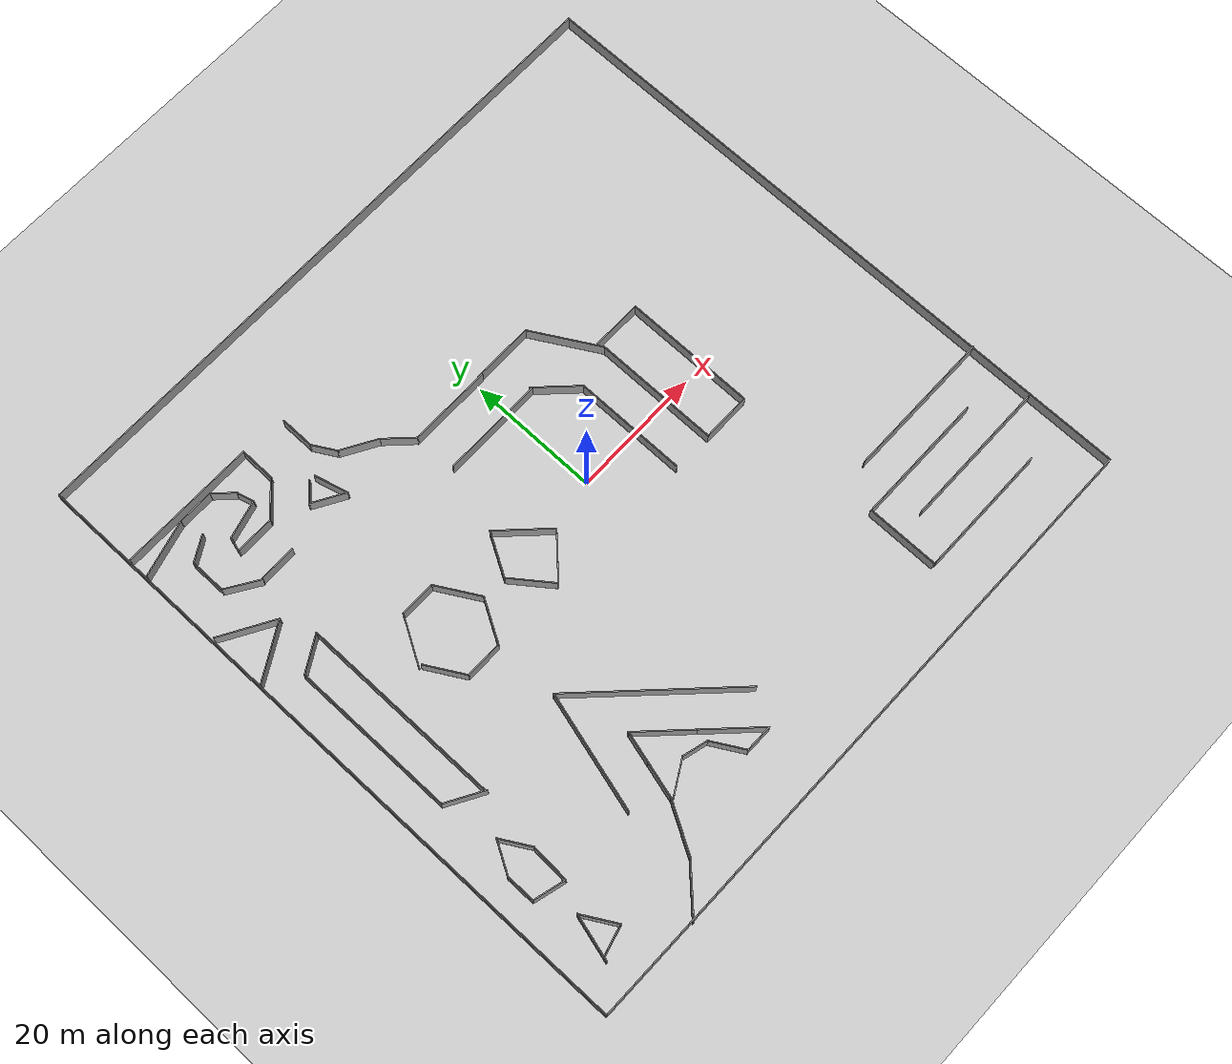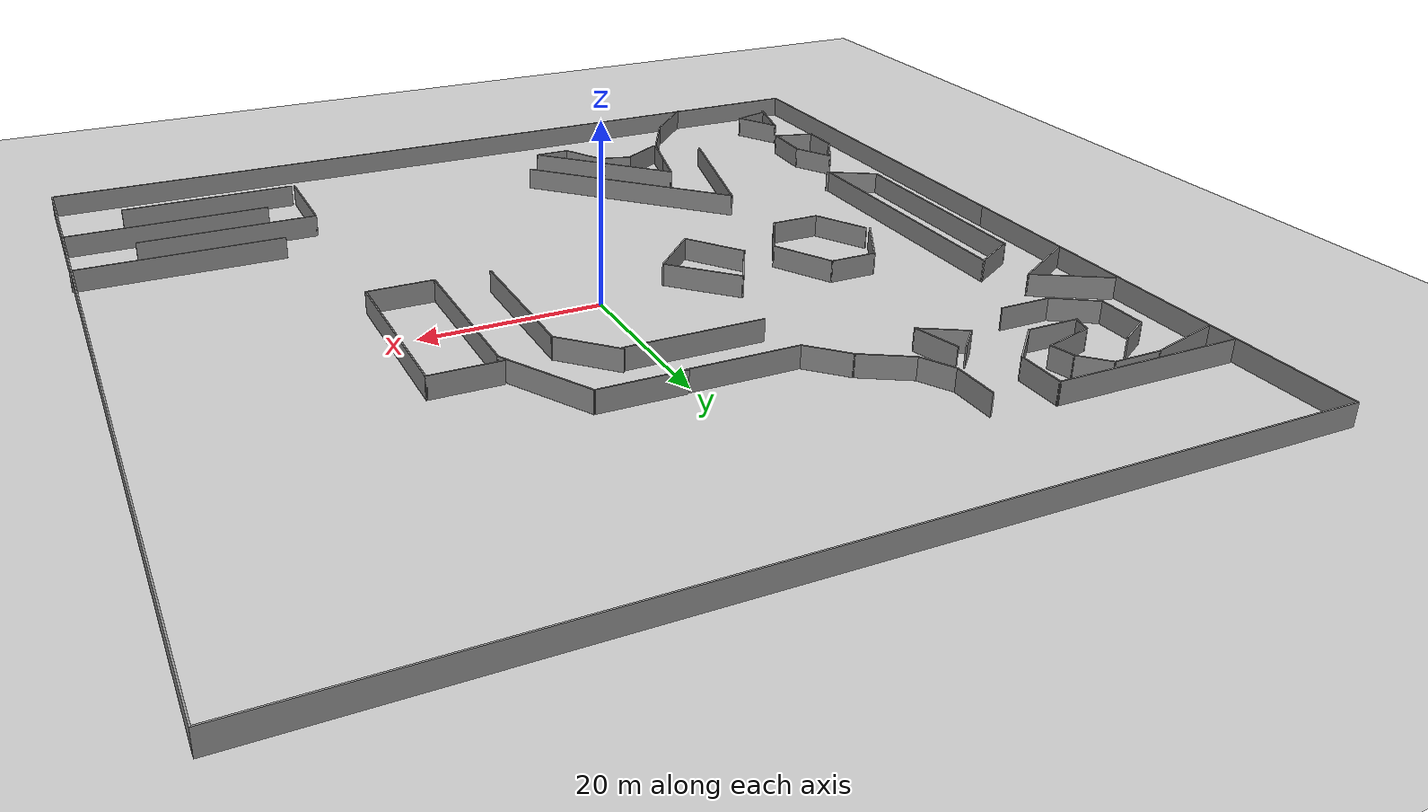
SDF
<sdf version="1.6">
 <world name="default">
  <light name="sun" type="directional">
   <pose>0 0 1000 0 -0 0</pose>
   <diffuse>0.8 0.8 0.8 1</diffuse>
   <specular>0.2 0.2 0.2 1</specular>
   <attenuation>
    <range>1000</range>
    <constant>0.9</constant>
    <linear>0.01</linear>
    <quadratic>0.001</quadratic>
   </attenuation>
   <direction>-0.5 0.1 -0.9</direction>
  </light>
  <model name="ground_plane">
   <static>1</static>
   <link name="link">
    <collision name="collision">
     <geometry><plane><normal>0 0 1</normal><size>100 100</size></plane></geometry>
     <surface><friction><ode><mu>100</mu><mu2>50</mu2></ode></friction></surface>
    </collision>
    <visual name="visual">
     <cast_shadows>0</cast_shadows>
     <geometry><plane><normal>0 0 1</normal><size>100 100</size></plane></geometry>
     <material>
      <ambient>1 1 1 1</ambient>
      <diffuse>0.8 0.8 0.8 1</diffuse>
      <specular>0.01 0.01 0.01 1</specular>
     </material>
    </visual>
   </link>
  </model>
  <gravity>0 0 -9.8</gravity>
  <magnetic_field>6e-06 2.3e-05 -4.2e-05</magnetic_field>
  <atmosphere type="adiabatic"/>
  <physics name="default_physics" default="0" type="ode">
   <max_step_size>0.001</max_step_size>
   <real_time_factor>1</real_time_factor>
   <real_time_update_rate>1000</real_time_update_rate>
  </physics>
  <scene><ambient>0.4 0.4 0.4 1</ambient><background>0.7 0.7 0.7 1</background><shadows>1</shadows></scene>
  <spherical_coordinates>
   <surface_model>EARTH_WGS84</surface_model>
   <latitude_deg>0</latitude_deg>
   <longitude_deg>0</longitude_deg>
   <elevation>0</elevation>
   <heading_deg>0</heading_deg>
  </spherical_coordinates>
  <model name="100x100_room_4">
   <pose>-0.02776 -0.034021 0 0 -0 0</pose>
   <link name="Wall_100">
    <collision name="Wall_100_Collision">
     <geometry><box><size>21 0.15 2.5</size></box></geometry>
     <pose>0 0 1.25 0 -0 0</pose>
    </collision>
    <visual name="Wall_100_Visual">
     <pose>0 0 1.25 0 -0 0</pose>
     <geometry><box><size>21 0.15 2.5</size></box></geometry>
     <material>
      <script><uri>file://media/materials/scripts/gazebo.material</uri><name>Gazebo/Grey</name></script>
      <ambient>1 1 1 1</ambient>
     </material>
     <meta><layer>0</layer></meta>
    </visual>
    <pose>-39.2691 36.4156 0 0 -0 3.14159</pose>
   </link>
   <link name="Wall_106">
    <collision name="Wall_106_Collision">
     <geometry><box><size>6 0.15 2.5</size></box></geometry>
     <pose>0 0 1.25 0 -0 0</pose>
    </collision>
    <visual name="Wall_106_Visual">
     <pose>0 0 1.25 0 -0 0</pose>
     <geometry><box><size>6 0.15 2.5</size></box></geometry>
     <material>
      <script><uri>file://media/materials/scripts/gazebo.material</uri><name>Gazebo/Grey</name></script>
      <ambient>1 1 1 1</ambient>
     </material>
     <meta><layer>0</layer></meta>
    </visual>
    <pose>-17.543 25.7363 0 0 -0 2.61799</pose>
   </link>
   <link name="Wall_107">
    <collision name="Wall_107_Collision">
     <geometry><box><size>4 0.15 2.5</size></box></geometry>
     <pose>0 0 1.25 0 -0 0</pose>
    </collision>
    <visual name="Wall_107_Visual">
     <pose>0 0 1.25 0 -0 0</pose>
     <geometry><box><size>4 0.15 2.5</size></box></geometry>
     <material>
      <script><uri>file://media/materials/scripts/gazebo.material</uri><name>Gazebo/Grey</name></script>
      <ambient>1 1 1 1</ambient>
     </material>
     <meta><layer>0</layer></meta>
    </visual>
    <pose>-21.0387 28.8659 0 0 -0 2.0944</pose>
   </link>
   <link name="Wall_108">
    <collision name="Wall_108_Collision">
     <geometry><box><size>5.25 0.15 2.5</size></box></geometry>
     <pose>0 0 1.25 0 -0 0</pose>
    </collision>
    <visual name="Wall_108_Visual">
     <pose>0 0 1.25 0 -0 0</pose>
     <geometry><box><size>5.25 0.15 2.5</size></box></geometry>
     <material>
      <script><uri>file://media/materials/scripts/gazebo.material</uri><name>Gazebo/Grey</name></script>
      <ambient>1 1 1 1</ambient>
     </material>
     <meta><layer>0</layer></meta>
    </visual>
    <pose>-22.0012 33.083 0 0 -0 1.5708</pose>
   </link>
   <link name="Wall_111">
    <collision name="Wall_111_Collision">
     <geometry><box><size>3.5 0.15 2.5</size></box></geometry>
     <pose>0 0 1.25 0 -0 0</pose>
    </collision>
    <visual name="Wall_111_Visual">
     <pose>0 0 1.25 0 -0 0</pose>
     <geometry><box><size>3.5 0.15 2.5</size></box></geometry>
     <material>
      <script><uri>file://media/materials/scripts/gazebo.material</uri><name>Gazebo/Grey</name></script>
      <ambient>1 1 1 1</ambient>
     </material>
     <meta><layer>0</layer></meta>
    </visual>
    <pose>-26.8402 25.8831 0 0 0 -2.35619</pose>
   </link>
   <link name="Wall_112">
    <collision name="Wall_112_Collision">
     <geometry><box><size>5.5 0.15 2.5</size></box></geometry>
     <pose>0 0 1.25 0 -0 0</pose>
    </collision>
    <visual name="Wall_112_Visual">
     <pose>0 0 1.25 0 -0 0</pose>
     <geometry><box><size>5.5 0.15 2.5</size></box></geometry>
     <material>
      <script><uri>file://media/materials/scripts/gazebo.material</uri><name>Gazebo/Grey</name></script>
      <ambient>1 1 1 1</ambient>
     </material>
     <meta><layer>0</layer></meta>
    </visual>
    <pose>-25.708 23.3612 0 0 0 -0.523599</pose>
   </link>
   <link name="Wall_113">
    <collision name="Wall_113_Collision">
     <geometry><box><size>5.25 0.15 2.5</size></box></geometry>
     <pose>0 0 1.25 0 -0 0</pose>
    </collision>
    <visual name="Wall_113_Visual">
     <pose>0 0 1.25 0 -0 0</pose>
     <geometry><box><size>5.25 0.15 2.5</size></box></geometry>
     <material>
      <script><uri>file://media/materials/scripts/gazebo.material</uri><name>Gazebo/Grey</name></script>
      <ambient>1 1 1 1</ambient>
     </material>
     <meta><layer>0</layer></meta>
    </visual>
    <pose>-24.0514 24.4868 0 0 -0 1.8326</pose>
   </link>
   <link name="Wall_12">
    <collision name="Wall_12_Collision">
     <geometry><box><size>7 0.15 2.5</size></box></geometry>
     <pose>0 0 1.25 0 -0 0</pose>
    </collision>
    <visual name="Wall_12_Visual">
     <pose>0 0 1.25 0 -0 0</pose>
     <geometry><box><size>7 0.15 2.5</size></box></geometry>
     <material>
      <script><uri>file://media/materials/scripts/gazebo.material</uri><name>Gazebo/Grey</name></script>
      <ambient>1 1 1 1</ambient>
     </material>
     <meta><layer>0</layer></meta>
    </visual>
    <pose>-44.2476 -41.972 0 0 -0 1.309</pose>
   </link>
   <link name="Wall_13">
    <collision name="Wall_13_Collision">
     <geometry><box><size>5.75 0.15 2.5</size></box></geometry>
     <pose>0 0 1.25 0 -0 0</pose>
    </collision>
    <visual name="Wall_13_Visual">
     <pose>0 0 1.25 0 -0 0</pose>
     <geometry><box><size>5.75 0.15 2.5</size></box></geometry>
     <material>
      <script><uri>file://media/materials/scripts/gazebo.material</uri><name>Gazebo/Grey</name></script>
      <ambient>1 1 1 1</ambient>
     </material>
     <meta><layer>0</layer></meta>
    </visual>
    <pose>-41.9612 -41.0886 0 0 0 -1.0472</pose>
   </link>
   <link name="Wall_14">
    <collision name="Wall_14_Collision">
     <geometry><box><size>4.75 0.15 2.5</size></box></geometry>
     <pose>0 0 1.25 0 -0 0</pose>
    </collision>
    <visual name="Wall_14_Visual">
     <pose>0 0 1.25 0 -0 0</pose>
     <geometry><box><size>4.75 0.15 2.5</size></box></geometry>
     <material>
      <script><uri>file://media/materials/scripts/gazebo.material</uri><name>Gazebo/Grey</name></script>
      <ambient>1 1 1 1</ambient>
     </material>
     <meta><layer>0</layer></meta>
    </visual>
    <pose>-42.7828 -44.1087 0 0 0 -2.87979</pose>
   </link>
   <link name="Wall_17">
    <collision name="Wall_17_Collision">
     <geometry><box><size>5 0.15 2.5</size></box></geometry>
     <pose>0 0 1.25 0 -0 0</pose>
    </collision>
    <visual name="Wall_17_Visual">
     <pose>0 0 1.25 0 -0 0</pose>
     <geometry><box><size>5 0.15 2.5</size></box></geometry>
     <material>
      <script><uri>file://media/materials/scripts/gazebo.material</uri><name>Gazebo/Grey</name></script>
      <ambient>1 1 1 1</ambient>
     </material>
     <meta><layer>0</layer></meta>
    </visual>
    <pose>-43.5808 -34.0787 0 0 -0 2.87979</pose>
   </link>
   <link name="Wall_18">
    <collision name="Wall_18_Collision">
     <geometry><box><size>4.5 0.15 2.5</size></box></geometry>
     <pose>0 0 1.25 0 -0 0</pose>
    </collision>
    <visual name="Wall_18_Visual">
     <pose>0 0 1.25 0 -0 0</pose>
     <geometry><box><size>4.5 0.15 2.5</size></box></geometry>
     <material>
      <script><uri>file://media/materials/scripts/gazebo.material</uri><name>Gazebo/Grey</name></script>
      <ambient>1 1 1 1</ambient>
     </material>
     <meta><layer>0</layer></meta>
    </visual>
    <pose>-45.9232 -31.2761 0 0 -0 1.5708</pose>
   </link>
   <link name="Wall_19">
    <collision name="Wall_19_Collision">
     <geometry><box><size>5.25 0.15 2.5</size></box></geometry>
     <pose>0 0 1.25 0 -0 0</pose>
    </collision>
    <visual name="Wall_19_Visual">
     <pose>0 0 1.25 0 -0 0</pose>
     <geometry><box><size>5.25 0.15 2.5</size></box></geometry>
     <material>
      <script><uri>file://media/materials/scripts/gazebo.material</uri><name>Gazebo/Grey</name></script>
      <ambient>1 1 1 1</ambient>
     </material>
     <meta><layer>0</layer></meta>
    </visual>
    <pose>-44.6482 -26.8927 0 0 -0 1.0472</pose>
   </link>
   <link name="Wall_20">
    <collision name="Wall_20_Collision">
     <geometry><box><size>5 0.15 2.5</size></box></geometry>
     <pose>0 0 1.25 0 -0 0</pose>
    </collision>
    <visual name="Wall_20_Visual">
     <pose>0 0 1.25 0 -0 0</pose>
     <geometry><box><size>5 0.15 2.5</size></box></geometry>
     <material>
      <script><uri>file://media/materials/scripts/gazebo.material</uri><name>Gazebo/Grey</name></script>
      <ambient>1 1 1 1</ambient>
     </material>
     <meta><layer>0</layer></meta>
    </visual>
    <pose>-42.1607 -26.7845 0 0 0 -1.0472</pose>
   </link>
   <link name="Wall_21">
    <collision name="Wall_21_Collision">
     <geometry><box><size>5.97901 0.15 2.5</size></box></geometry>
     <pose>0 0 1.25 0 -0 0</pose>
    </collision>
    <visual name="Wall_21_Visual">
     <pose>0 0 1.25 0 -0 0</pose>
     <geometry><box><size>5.97901 0.15 2.5</size></box></geometry>
     <material>
      <script><uri>file://media/materials/scripts/gazebo.material</uri><name>Gazebo/Grey</name></script>
      <ambient>1 1 1 1</ambient>
     </material>
     <meta><layer>0</layer></meta>
    </visual>
    <pose>-41.0933 -31.7955 0 0 0 -1.62061</pose>
   </link>
   <link name="Wall_23">
    <collision name="Wall_23_Collision">
     <geometry><box><size>6.25 0.15 2.5</size></box></geometry>
     <pose>0 0 1.25 0 -0 0</pose>
    </collision>
    <visual name="Wall_23_Visual">
     <pose>0 0 1.25 0 -0 0</pose>
     <geometry><box><size>6.25 0.15 2.5</size></box></geometry>
     <material>
      <script><uri>file://media/materials/scripts/gazebo.material</uri><name>Gazebo/Grey</name></script>
      <ambient>1 1 1 1</ambient>
     </material>
     <meta><layer>0</layer></meta>
    </visual>
    <pose>-42.3494 -18.0162 0 0 -0 2.61799</pose>
   </link>
   <link name="Wall_24">
    <collision name="Wall_24_Collision">
     <geometry><box><size>25 0.15 2.5</size></box></geometry>
     <pose>0 0 1.25 0 -0 0</pose>
    </collision>
    <visual name="Wall_24_Visual">
     <pose>0 0 1.25 0 -0 0</pose>
     <geometry><box><size>25 0.15 2.5</size></box></geometry>
     <material>
      <script><uri>file://media/materials/scripts/gazebo.material</uri><name>Gazebo/Grey</name></script>
      <ambient>1 1 1 1</ambient>
     </material>
     <meta><layer>0</layer></meta>
    </visual>
    <pose>-44.9908 -4.06616 0 0 -0 1.5708</pose>
   </link>
   <link name="Wall_25">
    <collision name="Wall_25_Collision">
     <geometry><box><size>6 0.15 2.5</size></box></geometry>
     <pose>0 0 1.25 0 -0 0</pose>
    </collision>
    <visual name="Wall_25_Visual">
     <pose>0 0 1.25 0 -0 0</pose>
     <geometry><box><size>6 0.15 2.5</size></box></geometry>
     <material>
      <script><uri>file://media/materials/scripts/gazebo.material</uri><name>Gazebo/Grey</name></script>
      <ambient>1 1 1 1</ambient>
     </material>
     <meta><layer>0</layer></meta>
    </visual>
    <pose>-42.4576 9.82134 0 0 -0 0.523599</pose>
   </link>
   <link name="Wall_26">
    <collision name="Wall_26_Collision">
     <geometry><box><size>30.75 0.15 2.5</size></box></geometry>
     <pose>0 0 1.25 0 -0 0</pose>
    </collision>
    <visual name="Wall_26_Visual">
     <pose>0 0 1.25 0 -0 0</pose>
     <geometry><box><size>30.75 0.15 2.5</size></box></geometry>
     <material>
      <script><uri>file://media/materials/scripts/gazebo.material</uri><name>Gazebo/Grey</name></script>
      <ambient>1 1 1 1</ambient>
     </material>
     <meta><layer>0</layer></meta>
    </visual>
    <pose>-39.9245 -4.01616 0 0 0 -1.5708</pose>
   </link>
   <link name="Wall_29">
    <collision name="Wall_29_Collision">
     <geometry><box><size>9.5 0.15 2.5</size></box></geometry>
     <pose>0 0 1.25 0 -0 0</pose>
    </collision>
    <visual name="Wall_29_Visual">
     <pose>0 0 1.25 0 -0 0</pose>
     <geometry><box><size>9.5 0.15 2.5</size></box></geometry>
     <material>
      <script><uri>file://media/materials/scripts/gazebo.material</uri><name>Gazebo/Grey</name></script>
      <ambient>1 1 1 1</ambient>
     </material>
     <meta><layer>0</layer></meta>
    </visual>
    <pose>-45.955 13.8224 0 0 -0 0.523599</pose>
   </link>
   <link name="Wall_30">
    <collision name="Wall_30_Collision">
     <geometry><box><size>9 0.15 2.5</size></box></geometry>
     <pose>0 0 1.25 0 -0 0</pose>
    </collision>
    <visual name="Wall_30_Visual">
     <pose>0 0 1.25 0 -0 0</pose>
     <geometry><box><size>9 0.15 2.5</size></box></geometry>
     <material>
      <script><uri>file://media/materials/scripts/gazebo.material</uri><name>Gazebo/Grey</name></script>
      <ambient>1 1 1 1</ambient>
     </material>
     <meta><layer>0</layer></meta>
    </visual>
    <pose>-45.7385 18.3724 0 0 -0 2.61799</pose>
   </link>
   <link name="Wall_32">
    <collision name="Wall_32_Collision">
     <geometry><box><size>7.5 0.15 2.5</size></box></geometry>
     <pose>0 0 1.25 0 -0 0</pose>
    </collision>
    <visual name="Wall_32_Visual">
     <pose>0 0 1.25 0 -0 0</pose>
     <geometry><box><size>7.5 0.15 2.5</size></box></geometry>
     <material>
      <script><uri>file://media/materials/scripts/gazebo.material</uri><name>Gazebo/Grey</name></script>
      <ambient>1 1 1 1</ambient>
     </material>
     <meta><layer>0</layer></meta>
    </visual>
    <pose>-32.1662 1.58931 0 0 -0 1.0472</pose>
   </link>
   <link name="Wall_33">
    <collision name="Wall_33_Collision">
     <geometry><box><size>5.5 0.15 2.5</size></box></geometry>
     <pose>0 0 1.25 0 -0 0</pose>
    </collision>
    <visual name="Wall_33_Visual">
     <pose>0 0 1.25 0 -0 0</pose>
     <geometry><box><size>5.5 0.15 2.5</size></box></geometry>
     <material>
      <script><uri>file://media/materials/scripts/gazebo.material</uri><name>Gazebo/Grey</name></script>
      <ambient>1 1 1 1</ambient>
     </material>
     <meta><layer>0</layer></meta>
    </visual>
    <pose>-27.6537 4.77196 0 0 -0 0</pose>
   </link>
   <link name="Wall_34">
    <collision name="Wall_34_Collision">
     <geometry><box><size>7.25 0.15 2.5</size></box></geometry>
     <pose>0 0 1.25 0 -0 0</pose>
    </collision>
    <visual name="Wall_34_Visual">
     <pose>0 0 1.25 0 -0 0</pose>
     <geometry><box><size>7.25 0.15 2.5</size></box></geometry>
     <material>
      <script><uri>file://media/materials/scripts/gazebo.material</uri><name>Gazebo/Grey</name></script>
      <ambient>1 1 1 1</ambient>
     </material>
     <meta><layer>0</layer></meta>
    </visual>
    <pose>-23.2037 1.69756 0 0 0 -1.0472</pose>
   </link>
   <link name="Wall_35">
    <collision name="Wall_35_Collision">
     <geometry><box><size>7 0.15 2.5</size></box></geometry>
     <pose>0 0 1.25 0 -0 0</pose>
    </collision>
    <visual name="Wall_35_Visual">
     <pose>0 0 1.25 0 -0 0</pose>
     <geometry><box><size>7 0.15 2.5</size></box></geometry>
     <material>
      <script><uri>file://media/materials/scripts/gazebo.material</uri><name>Gazebo/Grey</name></script>
      <ambient>1 1 1 1</ambient>
     </material>
     <meta><layer>0</layer></meta>
    </visual>
    <pose>-23.1412 -4.34296 0 0 0 -2.0944</pose>
   </link>
   <link name="Wall_36">
    <collision name="Wall_36_Collision">
     <geometry><box><size>5.75 0.15 2.5</size></box></geometry>
     <pose>0 0 1.25 0 -0 0</pose>
    </collision>
    <visual name="Wall_36_Visual">
     <pose>0 0 1.25 0 -0 0</pose>
     <geometry><box><size>5.75 0.15 2.5</size></box></geometry>
     <material>
      <script><uri>file://media/materials/scripts/gazebo.material</uri><name>Gazebo/Grey</name></script>
      <ambient>1 1 1 1</ambient>
     </material>
     <meta><layer>0</layer></meta>
    </visual>
    <pose>-27.6537 -7.3091 0 0 -0 3.14159</pose>
   </link>
   <link name="Wall_37">
    <collision name="Wall_37_Collision">
     <geometry><box><size>6.5 0.15 2.5</size></box></geometry>
     <pose>0 0 1.25 0 -0 0</pose>
    </collision>
    <visual name="Wall_37_Visual">
     <pose>0 0 1.25 0 -0 0</pose>
     <geometry><box><size>6.5 0.15 2.5</size></box></geometry>
     <material>
      <script><uri>file://media/materials/scripts/gazebo.material</uri><name>Gazebo/Grey</name></script>
      <ambient>1 1 1 1</ambient>
     </material>
     <meta><layer>0</layer></meta>
    </visual>
    <pose>-32.0412 -4.55947 0 0 -0 2.0944</pose>
   </link>
   <link name="Wall_39">
    <collision name="Wall_39_Collision">
     <geometry><box><size>7 0.15 2.5</size></box></geometry>
     <pose>0 0 1.25 0 -0 0</pose>
    </collision>
    <visual name="Wall_39_Visual">
     <pose>0 0 1.25 0 -0 0</pose>
     <geometry><box><size>7 0.15 2.5</size></box></geometry>
     <material>
      <script><uri>file://media/materials/scripts/gazebo.material</uri><name>Gazebo/Grey</name></script>
      <ambient>1 1 1 1</ambient>
     </material>
     <meta><layer>0</layer></meta>
    </visual>
    <pose>-16.0129 1.37281 0 0 -0 1.0472</pose>
   </link>
   <link name="Wall_40">
    <collision name="Wall_40_Collision">
     <geometry><box><size>9 0.15 2.5</size></box></geometry>
     <pose>0 0 1.25 0 -0 0</pose>
    </collision>
    <visual name="Wall_40_Visual">
     <pose>0 0 1.25 0 -0 0</pose>
     <geometry><box><size>9 0.15 2.5</size></box></geometry>
     <material>
      <script><uri>file://media/materials/scripts/gazebo.material</uri><name>Gazebo/Grey</name></script>
      <ambient>1 1 1 1</ambient>
     </material>
     <meta><layer>0</layer></meta>
    </visual>
    <pose>-11.1715 1.20999 0 0 0 -0.785398</pose>
   </link>
   <link name="Wall_41">
    <collision name="Wall_41_Collision">
     <geometry><box><size>7.75 0.15 2.5</size></box></geometry>
     <pose>0 0 1.25 0 -0 0</pose>
    </collision>
    <visual name="Wall_41_Visual">
     <pose>0 0 1.25 0 -0 0</pose>
     <geometry><box><size>7.75 0.15 2.5</size></box></geometry>
     <material>
      <script><uri>file://media/materials/scripts/gazebo.material</uri><name>Gazebo/Grey</name></script>
      <ambient>1 1 1 1</ambient>
     </material>
     <meta><layer>0</layer></meta>
    </visual>
    <pose>-10.7295 -4.60596 0 0 0 -2.35619</pose>
   </link>
   <link name="Wall_42">
    <collision name="Wall_42_Collision">
     <geometry><box><size>7.29509 0.15 2.5</size></box></geometry>
     <pose>0 0 1.25 0 -0 0</pose>
    </collision>
    <visual name="Wall_42_Visual">
     <pose>0 0 1.25 0 -0 0</pose>
     <geometry><box><size>7.29509 0.15 2.5</size></box></geometry>
     <material>
      <script><uri>file://media/materials/scripts/gazebo.material</uri><name>Gazebo/Grey</name></script>
      <ambient>1 1 1 1</ambient>
     </material>
     <meta><layer>0</layer></meta>
    </visual>
    <pose>-15.571 -4.44315 0 0 -0 2.21812</pose>
   </link>
   <link name="Wall_44">
    <collision name="Wall_44_Collision">
     <geometry><box><size>5.75 0.15 2.5</size></box></geometry>
     <pose>0 0 1.25 0 -0 0</pose>
    </collision>
    <visual name="Wall_44_Visual">
     <pose>0 0 1.25 0 -0 0</pose>
     <geometry><box><size>5.75 0.15 2.5</size></box></geometry>
     <material>
      <script><uri>file://media/materials/scripts/gazebo.material</uri><name>Gazebo/Grey</name></script>
      <ambient>1 1 1 1</ambient>
     </material>
     <meta><layer>0</layer></meta>
    </visual>
    <pose>-36.858 21.7806 0 0 -0 3.14159</pose>
   </link>
   <link name="Wall_45">
    <collision name="Wall_45_Collision">
     <geometry><box><size>5.64442 0.15 2.5</size></box></geometry>
     <pose>0 0 1.25 0 -0 0</pose>
    </collision>
    <visual name="Wall_45_Visual">
     <pose>0 0 1.25 0 -0 0</pose>
     <geometry><box><size>5.64442 0.15 2.5</size></box></geometry>
     <material>
      <script><uri>file://media/materials/scripts/gazebo.material</uri><name>Gazebo/Grey</name></script>
      <ambient>1 1 1 1</ambient>
     </material>
     <meta><layer>0</layer></meta>
    </visual>
    <pose>-41.9746 23.1181 0 0 -0 2.57412</pose>
   </link>
   <link name="Wall_46">
    <collision name="Wall_46_Collision">
     <geometry><box><size>5.5 0.15 2.5</size></box></geometry>
     <pose>0 0 1.25 0 -0 0</pose>
    </collision>
    <visual name="Wall_46_Visual">
     <pose>0 0 1.25 0 -0 0</pose>
     <geometry><box><size>5.5 0.15 2.5</size></box></geometry>
     <material>
      <script><uri>file://media/materials/scripts/gazebo.material</uri><name>Gazebo/Grey</name></script>
      <ambient>1 1 1 1</ambient>
     </material>
     <meta><layer>0</layer></meta>
    </visual>
    <pose>-44.2913 27.2697 0 0 -0 1.5708</pose>
   </link>
   <link name="Wall_47">
    <collision name="Wall_47_Collision">
     <geometry><box><size>4.25 0.15 2.5</size></box></geometry>
     <pose>0 0 1.25 0 -0 0</pose>
    </collision>
    <visual name="Wall_47_Visual">
     <pose>0 0 1.25 0 -0 0</pose>
     <geometry><box><size>4.25 0.15 2.5</size></box></geometry>
     <material>
      <script><uri>file://media/materials/scripts/gazebo.material</uri><name>Gazebo/Grey</name></script>
      <ambient>1 1 1 1</ambient>
     </material>
     <meta><layer>0</layer></meta>
    </visual>
    <pose>-42.5159 30.9697 0 0 -0 0.523599</pose>
   </link>
   <link name="Wall_49">
    <collision name="Wall_49_Collision">
     <geometry><box><size>8.75 0.15 2.5</size></box></geometry>
     <pose>0 0 1.25 0 -0 0</pose>
    </collision>
    <visual name="Wall_49_Visual">
     <pose>0 0 1.25 0 -0 0</pose>
     <geometry><box><size>8.75 0.15 2.5</size></box></geometry>
     <material>
      <script><uri>file://media/materials/scripts/gazebo.material</uri><name>Gazebo/Grey</name></script>
      <ambient>1 1 1 1</ambient>
     </material>
     <meta><layer>0</layer></meta>
    </visual>
    <pose>-45.5719 34.3022 0 0 -0 0.261799</pose>
   </link>
   <link name="Wall_5">
    <collision name="Wall_5_Collision">
     <geometry><box><size>52 0.15 2.5</size></box></geometry>
     <pose>0 0 1.25 0 -0 0</pose>
    </collision>
    <visual name="Wall_5_Visual">
     <pose>0 0 1.25 0 -0 0</pose>
     <geometry><box><size>52 0.15 2.5</size></box></geometry>
     <material>
      <script><uri>file://media/materials/scripts/gazebo.material</uri><name>Gazebo/Grey</name></script>
      <ambient>1 1 1 1</ambient>
     </material>
     <meta><layer>0</layer></meta>
    </visual>
    <pose>-49.9807 24.1168 0 0 -0 1.5708</pose>
   </link>
   <link name="Wall_50">
    <collision name="Wall_50_Collision">
     <geometry><box><size>5.5 0.15 2.5</size></box></geometry>
     <pose>0 0 1.25 0 -0 0</pose>
    </collision>
    <visual name="Wall_50_Visual">
     <pose>0 0 1.25 0 -0 0</pose>
     <geometry><box><size>5.5 0.15 2.5</size></box></geometry>
     <material>
      <script><uri>file://media/materials/scripts/gazebo.material</uri><name>Gazebo/Grey</name></script>
      <ambient>1 1 1 1</ambient>
     </material>
     <meta><layer>0</layer></meta>
    </visual>
    <pose>-38.7434 35.4151 0 0 -0 0</pose>
   </link>
   <link name="Wall_51">
    <collision name="Wall_51_Collision">
     <geometry><box><size>3.75 0.15 2.5</size></box></geometry>
     <pose>0 0 1.25 0 -0 0</pose>
    </collision>
    <visual name="Wall_51_Visual">
     <pose>0 0 1.25 0 -0 0</pose>
     <geometry><box><size>3.75 0.15 2.5</size></box></geometry>
     <material>
      <script><uri>file://media/materials/scripts/gazebo.material</uri><name>Gazebo/Grey</name></script>
      <ambient>1 1 1 1</ambient>
     </material>
     <meta><layer>0</layer></meta>
    </visual>
    <pose>-34.7957 34.1423 0 0 0 -0.785398</pose>
   </link>
   <link name="Wall_52">
    <collision name="Wall_52_Collision">
     <geometry><box><size>2.75 0.15 2.5</size></box></geometry>
     <pose>0 0 1.25 0 -0 0</pose>
    </collision>
    <visual name="Wall_52_Visual">
     <pose>0 0 1.25 0 -0 0</pose>
     <geometry><box><size>2.75 0.15 2.5</size></box></geometry>
     <material>
      <script><uri>file://media/materials/scripts/gazebo.material</uri><name>Gazebo/Grey</name></script>
      <ambient>1 1 1 1</ambient>
     </material>
     <meta><layer>0</layer></meta>
    </visual>
    <pose>-33.1864 31.6138 0 0 0 -1.309</pose>
   </link>
   <link name="Wall_53">
    <collision name="Wall_53_Collision">
     <geometry><box><size>6 0.15 2.5</size></box></geometry>
     <pose>0 0 1.25 0 -0 0</pose>
    </collision>
    <visual name="Wall_53_Visual">
     <pose>0 0 1.25 0 -0 0</pose>
     <geometry><box><size>6 0.15 2.5</size></box></geometry>
     <material>
      <script><uri>file://media/materials/scripts/gazebo.material</uri><name>Gazebo/Grey</name></script>
      <ambient>1 1 1 1</ambient>
     </material>
     <meta><layer>0</layer></meta>
    </visual>
    <pose>-35.6753 29.6011 0 0 0 -2.87979</pose>
   </link>
   <link name="Wall_54">
    <collision name="Wall_54_Collision">
     <geometry><box><size>2.25 0.15 2.5</size></box></geometry>
     <pose>0 0 1.25 0 -0 0</pose>
    </collision>
    <visual name="Wall_54_Visual">
     <pose>0 0 1.25 0 -0 0</pose>
     <geometry><box><size>2.25 0.15 2.5</size></box></geometry>
     <material>
      <script><uri>file://media/materials/scripts/gazebo.material</uri><name>Gazebo/Grey</name></script>
      <ambient>1 1 1 1</ambient>
     </material>
     <meta><layer>0</layer></meta>
    </visual>
    <pose>-38.7724 27.8298 0 0 0 -1.8326</pose>
   </link>
   <link name="Wall_55">
    <collision name="Wall_55_Collision">
     <geometry><box><size>6 0.15 2.5</size></box></geometry>
     <pose>0 0 1.25 0 -0 0</pose>
    </collision>
    <visual name="Wall_55_Visual">
     <pose>0 0 1.25 0 -0 0</pose>
     <geometry><box><size>6 0.15 2.5</size></box></geometry>
     <material>
      <script><uri>file://media/materials/scripts/gazebo.material</uri><name>Gazebo/Grey</name></script>
      <ambient>1 1 1 1</ambient>
     </material>
     <meta><layer>0</layer></meta>
    </visual>
    <pose>-36.1191 26.8156 0 0 -0 0</pose>
   </link>
   <link name="Wall_57">
    <collision name="Wall_57_Collision">
     <geometry><box><size>20 0.15 2.5</size></box></geometry>
     <pose>0 0 1.25 0 -0 0</pose>
    </collision>
    <visual name="Wall_57_Visual">
     <pose>0 0 1.25 0 -0 0</pose>
     <geometry><box><size>20 0.15 2.5</size></box></geometry>
     <material>
      <script><uri>file://media/materials/scripts/gazebo.material</uri><name>Gazebo/Grey</name></script>
      <ambient>1 1 1 1</ambient>
     </material>
     <meta><layer>0</layer></meta>
    </visual>
    <pose>32.8257 -41.9412 0 0 -0 0</pose>
   </link>
   <link name="Wall_59">
    <collision name="Wall_59_Collision">
     <geometry><box><size>11 0.15 2.5</size></box></geometry>
     <pose>0 0 1.25 0 -0 0</pose>
    </collision>
    <visual name="Wall_59_Visual">
     <pose>0 0 1.25 0 -0 0</pose>
     <geometry><box><size>11 0.15 2.5</size></box></geometry>
     <material>
      <script><uri>file://media/materials/scripts/gazebo.material</uri><name>Gazebo/Grey</name></script>
      <ambient>1 1 1 1</ambient>
     </material>
     <meta><layer>0</layer></meta>
    </visual>
    <pose>22.4833 -36.377 0 0 -0 1.5708</pose>
   </link>
   <link name="Wall_6">
    <collision name="Wall_6_Collision">
     <geometry><box><size>100 0.15 2.5</size></box></geometry>
     <pose>0 0 1.25 0 -0 0</pose>
    </collision>
    <visual name="Wall_6_Visual">
     <pose>0 0 1.25 0 -0 0</pose>
     <geometry><box><size>100 0.15 2.5</size></box></geometry>
     <material>
      <script><uri>file://media/materials/scripts/gazebo.material</uri><name>Gazebo/Grey</name></script>
      <ambient>1 1 1 1</ambient>
     </material>
     <meta><layer>0</layer></meta>
    </visual>
    <pose>-0.05573 50.0418 0 0 -0 0</pose>
   </link>
   <link name="Wall_60">
    <collision name="Wall_60_Collision">
     <geometry><box><size>20.25 0.15 2.5</size></box></geometry>
     <pose>0 0 1.25 0 -0 0</pose>
    </collision>
    <visual name="Wall_60_Visual">
     <pose>0 0 1.25 0 -0 0</pose>
     <geometry><box><size>20.25 0.15 2.5</size></box></geometry>
     <material>
      <script><uri>file://media/materials/scripts/gazebo.material</uri><name>Gazebo/Grey</name></script>
      <ambient>1 1 1 1</ambient>
     </material>
     <meta><layer>0</layer></meta>
    </visual>
    <pose>32.5333 -30.952 0 0 -0 0</pose>
   </link>
   <link name="Wall_62">
    <collision name="Wall_62_Collision">
     <geometry><box><size>23 0.15 2.5</size></box></geometry>
     <pose>0 0 1.25 0 -0 0</pose>
    </collision>
    <visual name="Wall_62_Visual">
     <pose>0 0 1.25 0 -0 0</pose>
     <geometry><box><size>23 0.15 2.5</size></box></geometry>
     <material>
      <script><uri>file://media/materials/scripts/gazebo.material</uri><name>Gazebo/Grey</name></script>
      <ambient>1 1 1 1</ambient>
     </material>
     <meta><layer>0</layer></meta>
    </visual>
    <pose>38.467 -35.9586 0 0 -0 3.14159</pose>
   </link>
   <link name="Wall_64">
    <collision name="Wall_64_Collision">
     <geometry><box><size>23 0.15 2.5</size></box></geometry>
     <pose>0 0 1.25 0 -0 0</pose>
    </collision>
    <visual name="Wall_64_Visual">
     <pose>0 0 1.25 0 -0 0</pose>
     <geometry><box><size>23 0.15 2.5</size></box></geometry>
     <material>
      <script><uri>file://media/materials/scripts/gazebo.material</uri><name>Gazebo/Grey</name></script>
      <ambient>1 1 1 1</ambient>
     </material>
     <meta><layer>0</layer></meta>
    </visual>
    <pose>38.6061 -25.802 0 0 -0 3.14159</pose>
   </link>
   <link name="Wall_67">
    <collision name="Wall_67_Collision">
     <geometry><box><size>18.25 0.15 2.5</size></box></geometry>
     <pose>0 0 1.25 0 -0 0</pose>
    </collision>
    <visual name="Wall_67_Visual">
     <pose>0 0 1.25 0 -0 0</pose>
     <geometry><box><size>18.25 0.15 2.5</size></box></geometry>
     <material>
      <script><uri>file://media/materials/scripts/gazebo.material</uri><name>Gazebo/Grey</name></script>
      <ambient>1 1 1 1</ambient>
     </material>
     <meta><layer>0</layer></meta>
    </visual>
    <pose>-27.07 -25.8256 0 0 -0 1.309</pose>
   </link>
   <link name="Wall_68">
    <collision name="Wall_68_Collision">
     <geometry><box><size>26.5 0.15 2.5</size></box></geometry>
     <pose>0 0 1.25 0 -0 0</pose>
    </collision>
    <visual name="Wall_68_Visual">
     <pose>0 0 1.25 0 -0 0</pose>
     <geometry><box><size>26.5 0.15 2.5</size></box></geometry>
     <material>
      <script><uri>file://media/materials/scripts/gazebo.material</uri><name>Gazebo/Grey</name></script>
      <ambient>1 1 1 1</ambient>
     </material>
     <meta><layer>0</layer></meta>
    </visual>
    <pose>-15.4116 -26.4001 0 0 0 -0.785398</pose>
   </link>
   <link name="Wall_7">
    <collision name="Wall_7_Collision">
     <geometry><box><size>100 0.15 2.5</size></box></geometry>
     <pose>0 0 1.25 0 -0 0</pose>
    </collision>
    <visual name="Wall_7_Visual">
     <pose>0 0 1.25 0 -0 0</pose>
     <geometry><box><size>100 0.15 2.5</size></box></geometry>
     <material>
      <script><uri>file://media/materials/scripts/gazebo.material</uri><name>Gazebo/Grey</name></script>
      <ambient>1 1 1 1</ambient>
     </material>
     <meta><layer>0</layer></meta>
    </visual>
    <pose>49.8693 0.116781 0 0 0 -1.5708</pose>
   </link>
   <link name="Wall_72">
    <collision name="Wall_72_Collision">
     <geometry><box><size>8.25 0.15 2.5</size></box></geometry>
     <pose>0 0 1.25 0 -0 0</pose>
    </collision>
    <visual name="Wall_72_Visual">
     <pose>0 0 1.25 0 -0 0</pose>
     <geometry><box><size>8.25 0.15 2.5</size></box></geometry>
     <material>
      <script><uri>file://media/materials/scripts/gazebo.material</uri><name>Gazebo/Grey</name></script>
      <ambient>1 1 1 1</ambient>
     </material>
     <meta><layer>0</layer></meta>
    </visual>
    <pose>-31.279 -47.1469 0 0 -0 0.785398</pose>
   </link>
   <link name="Wall_73">
    <collision name="Wall_73_Collision">
     <geometry><box><size>8 0.15 2.5</size></box></geometry>
     <pose>0 0 1.25 0 -0 0</pose>
    </collision>
    <visual name="Wall_73_Visual">
     <pose>0 0 1.25 0 -0 0</pose>
     <geometry><box><size>8 0.15 2.5</size></box></geometry>
     <material>
      <script><uri>file://media/materials/scripts/gazebo.material</uri><name>Gazebo/Grey</name></script>
      <ambient>1 1 1 1</ambient>
     </material>
     <meta><layer>0</layer></meta>
    </visual>
    <pose>-26.4527 -40.884 0 0 -0 1.0472</pose>
   </link>
   <link name="Wall_74">
    <collision name="Wall_74_Collision">
     <geometry><box><size>5.5 0.15 2.5</size></box></geometry>
     <pose>0 0 1.25 0 -0 0</pose>
    </collision>
    <visual name="Wall_74_Visual">
     <pose>0 0 1.25 0 -0 0</pose>
     <geometry><box><size>5.5 0.15 2.5</size></box></geometry>
     <material>
      <script><uri>file://media/materials/scripts/gazebo.material</uri><name>Gazebo/Grey</name></script>
      <ambient>1 1 1 1</ambient>
     </material>
     <meta><layer>0</layer></meta>
    </visual>
    <pose>-23.7979 -34.901 0 0 -0 1.309</pose>
   </link>
   <link name="Wall_75">
    <collision name="Wall_75_Collision">
     <geometry><box><size>5 0.15 2.5</size></box></geometry>
     <pose>0 0 1.25 0 -0 0</pose>
    </collision>
    <visual name="Wall_75_Visual">
     <pose>0 0 1.25 0 -0 0</pose>
     <geometry><box><size>5 0.15 2.5</size></box></geometry>
     <material>
      <script><uri>file://media/materials/scripts/gazebo.material</uri><name>Gazebo/Grey</name></script>
      <ambient>1 1 1 1</ambient>
     </material>
     <meta><layer>0</layer></meta>
    </visual>
    <pose>-22.4779 -29.9748 0 0 -0 1.309</pose>
   </link>
   <link name="Wall_76">
    <collision name="Wall_76_Collision">
     <geometry><box><size>9 0.15 2.5</size></box></geometry>
     <pose>0 0 1.25 0 -0 0</pose>
    </collision>
    <visual name="Wall_76_Visual">
     <pose>0 0 1.25 0 -0 0</pose>
     <geometry><box><size>9 0.15 2.5</size></box></geometry>
     <material>
      <script><uri>file://media/materials/scripts/gazebo.material</uri><name>Gazebo/Grey</name></script>
      <ambient>1 1 1 1</ambient>
     </material>
     <meta><layer>0</layer></meta>
    </visual>
    <pose>-18.7213 -30.7614 0 0 0 -0.785398</pose>
   </link>
   <link name="Wall_77">
    <collision name="Wall_77_Collision">
     <geometry><box><size>9.5 0.15 2.5</size></box></geometry>
     <pose>0 0 1.25 0 -0 0</pose>
    </collision>
    <visual name="Wall_77_Visual">
     <pose>0 0 1.25 0 -0 0</pose>
     <geometry><box><size>9.5 0.15 2.5</size></box></geometry>
     <material>
      <script><uri>file://media/materials/scripts/gazebo.material</uri><name>Gazebo/Grey</name></script>
      <ambient>1 1 1 1</ambient>
     </material>
     <meta><layer>0</layer></meta>
    </visual>
    <pose>-12.2867 -37.196 0 0 0 -0.785398</pose>
   </link>
   <link name="Wall_78">
    <collision name="Wall_78_Collision">
     <geometry><box><size>4.25 0.15 2.5</size></box></geometry>
     <pose>0 0 1.25 0 -0 0</pose>
    </collision>
    <visual name="Wall_78_Visual">
     <pose>0 0 1.25 0 -0 0</pose>
     <geometry><box><size>4.25 0.15 2.5</size></box></geometry>
     <material>
      <script><uri>file://media/materials/scripts/gazebo.material</uri><name>Gazebo/Grey</name></script>
      <ambient>1 1 1 1</ambient>
     </material>
     <meta><layer>0</layer></meta>
    </visual>
    <pose>-11.0309 -40.5018 0 0 -0 3.14159</pose>
   </link>
   <link name="Wall_79">
    <collision name="Wall_79_Collision">
     <geometry><box><size>5.5 0.15 2.5</size></box></geometry>
     <pose>0 0 1.25 0 -0 0</pose>
    </collision>
    <visual name="Wall_79_Visual">
     <pose>0 0 1.25 0 -0 0</pose>
     <geometry><box><size>5.5 0.15 2.5</size></box></geometry>
     <material>
      <script><uri>file://media/materials/scripts/gazebo.material</uri><name>Gazebo/Grey</name></script>
      <ambient>1 1 1 1</ambient>
     </material>
     <meta><layer>0</layer></meta>
    </visual>
    <pose>-14.4184 -38.1851 0 0 -0 2.0944</pose>
   </link>
   <link name="Wall_8">
    <collision name="Wall_8_Collision">
     <geometry><box><size>100 0.15 2.5</size></box></geometry>
     <pose>0 0 1.25 0 -0 0</pose>
    </collision>
    <visual name="Wall_8_Visual">
     <pose>0 0 1.25 0 -0 0</pose>
     <geometry><box><size>100 0.15 2.5</size></box></geometry>
     <material>
      <script><uri>file://media/materials/scripts/gazebo.material</uri><name>Gazebo/Grey</name></script>
      <ambient>1 1 1 1</ambient>
     </material>
     <meta><layer>0</layer></meta>
    </visual>
    <pose>-0.05573 -49.8082 0 0 -0 3.14159</pose>
   </link>
   <link name="Wall_80">
    <collision name="Wall_80_Collision">
     <geometry><box><size>4 0.15 2.5</size></box></geometry>
     <pose>0 0 1.25 0 -0 0</pose>
    </collision>
    <visual name="Wall_80_Visual">
     <pose>0 0 1.25 0 -0 0</pose>
     <geometry><box><size>4 0.15 2.5</size></box></geometry>
     <material>
      <script><uri>file://media/materials/scripts/gazebo.material</uri><name>Gazebo/Grey</name></script>
      <ambient>1 1 1 1</ambient>
     </material>
     <meta><layer>0</layer></meta>
    </visual>
    <pose>-17.6153 -35.3703 0 0 -0 2.87979</pose>
   </link>
   <link name="Wall_81">
    <collision name="Wall_81_Collision">
     <geometry><box><size>5.75 0.15 2.5</size></box></geometry>
     <pose>0 0 1.25 0 -0 0</pose>
    </collision>
    <visual name="Wall_81_Visual">
     <pose>0 0 1.25 0 -0 0</pose>
     <geometry><box><size>5.75 0.15 2.5</size></box></geometry>
     <material>
      <script><uri>file://media/materials/scripts/gazebo.material</uri><name>Gazebo/Grey</name></script>
      <ambient>1 1 1 1</ambient>
     </material>
     <meta><layer>0</layer></meta>
    </visual>
    <pose>-21.8996 -36.2721 0 0 0 -2.61799</pose>
   </link>
   <link name="Wall_83">
    <collision name="Wall_83_Collision">
     <geometry><box><size>17.25 0.15 2.5</size></box></geometry>
     <pose>0 0 1.25 0 -0 0</pose>
    </collision>
    <visual name="Wall_83_Visual">
     <pose>0 0 1.25 0 -0 0</pose>
     <geometry><box><size>17.25 0.15 2.5</size></box></geometry>
     <material>
      <script><uri>file://media/materials/scripts/gazebo.material</uri><name>Gazebo/Grey</name></script>
      <ambient>1 1 1 1</ambient>
     </material>
     <meta><layer>0</layer></meta>
    </visual>
    <pose>9.40503 0.834929 0 0 -0 1.5708</pose>
   </link>
   <link name="Wall_84">
    <collision name="Wall_84_Collision">
     <geometry><box><size>7.5 0.15 2.5</size></box></geometry>
     <pose>0 0 1.25 0 -0 0</pose>
    </collision>
    <visual name="Wall_84_Visual">
     <pose>0 0 1.25 0 -0 0</pose>
     <geometry><box><size>7.5 0.15 2.5</size></box></geometry>
     <material>
      <script><uri>file://media/materials/scripts/gazebo.material</uri><name>Gazebo/Grey</name></script>
      <ambient>1 1 1 1</ambient>
     </material>
     <meta><layer>0</layer></meta>
    </visual>
    <pose>6.80641 11.9835 0 0 -0 2.35619</pose>
   </link>
   <link name="Wall_86">
    <collision name="Wall_86_Collision">
     <geometry><box><size>9.5 0.15 2.5</size></box></geometry>
     <pose>0 0 1.25 0 -0 0</pose>
    </collision>
    <visual name="Wall_86_Visual">
     <pose>0 0 1.25 0 -0 0</pose>
     <geometry><box><size>9.5 0.15 2.5</size></box></geometry>
     <material>
      <script><uri>file://media/materials/scripts/gazebo.material</uri><name>Gazebo/Grey</name></script>
      <ambient>1 1 1 1</ambient>
     </material>
     <meta><layer>0</layer></meta>
    </visual>
    <pose>5.31481 20.8067 0 0 -0 0</pose>
   </link>
   <link name="Wall_87">
    <collision name="Wall_87_Collision">
     <geometry><box><size>11.25 0.15 2.5</size></box></geometry>
     <pose>0 0 1.25 0 -0 0</pose>
    </collision>
    <visual name="Wall_87_Visual">
     <pose>0 0 1.25 0 -0 0</pose>
     <geometry><box><size>11.25 0.15 2.5</size></box></geometry>
     <material>
      <script><uri>file://media/materials/scripts/gazebo.material</uri><name>Gazebo/Grey</name></script>
      <ambient>1 1 1 1</ambient>
     </material>
     <meta><layer>0</layer></meta>
    </visual>
    <pose>12.7648 16.0002 0 0 0 -1.0472</pose>
   </link>
   <link name="Wall_88">
    <collision name="Wall_88_Collision">
     <geometry><box><size>19.25 0.15 2.5</size></box></geometry>
     <pose>0 0 1.25 0 -0 0</pose>
    </collision>
    <visual name="Wall_88_Visual">
     <pose>0 0 1.25 0 -0 0</pose>
     <geometry><box><size>19.25 0.15 2.5</size></box></geometry>
     <material>
      <script><uri>file://media/materials/scripts/gazebo.material</uri><name>Gazebo/Grey</name></script>
      <ambient>1 1 1 1</ambient>
     </material>
     <meta><layer>0</layer></meta>
    </visual>
    <pose>15.5398 1.64379 0 0 0 -1.5708</pose>
   </link>
   <link name="Wall_89">
    <collision name="Wall_89_Collision">
     <geometry><box><size>7.5 0.15 2.5</size></box></geometry>
     <pose>0 0 1.25 0 -0 0</pose>
    </collision>
    <visual name="Wall_89_Visual">
     <pose>0 0 1.25 0 -0 0</pose>
     <geometry><box><size>7.5 0.15 2.5</size></box></geometry>
     <material>
      <script><uri>file://media/materials/scripts/gazebo.material</uri><name>Gazebo/Grey</name></script>
      <ambient>1 1 1 1</ambient>
     </material>
     <meta><layer>0</layer></meta>
    </visual>
    <pose>19.2148 -7.90621 0 0 -0 0</pose>
   </link>
   <link name="Wall_9">
    <collision name="Wall_9_Collision">
     <geometry><box><size>48.15 0.15 2.5</size></box></geometry>
     <pose>0 0 1.25 0 -0 0</pose>
    </collision>
    <visual name="Wall_9_Visual">
     <pose>0 0 1.25 0 -0 0</pose>
     <geometry><box><size>48.15 0.15 2.5</size></box></geometry>
     <material>
      <script><uri>file://media/materials/scripts/gazebo.material</uri><name>Gazebo/Grey</name></script>
      <ambient>1 1 1 1</ambient>
     </material>
     <meta><layer>0</layer></meta>
    </visual>
    <pose>-49.9807 -25.8082 0 0 -0 1.5708</pose>
   </link>
   <link name="Wall_90">
    <collision name="Wall_90_Collision">
     <geometry><box><size>20.25 0.15 2.5</size></box></geometry>
     <pose>0 0 1.25 0 -0 0</pose>
    </collision>
    <visual name="Wall_90_Visual">
     <pose>0 0 1.25 0 -0 0</pose>
     <geometry><box><size>20.25 0.15 2.5</size></box></geometry>
     <material>
      <script><uri>file://media/materials/scripts/gazebo.material</uri><name>Gazebo/Grey</name></script>
      <ambient>1 1 1 1</ambient>
     </material>
     <meta><layer>0</layer></meta>
    </visual>
    <pose>22.8898 2.14379 0 0 -0 1.5708</pose>
   </link>
   <link name="Wall_91">
    <collision name="Wall_91_Collision">
     <geometry><box><size>7.75 0.15 2.5</size></box></geometry>
     <pose>0 0 1.25 0 -0 0</pose>
    </collision>
    <visual name="Wall_91_Visual">
     <pose>0 0 1.25 0 -0 0</pose>
     <geometry><box><size>7.75 0.15 2.5</size></box></geometry>
     <material>
      <script><uri>file://media/materials/scripts/gazebo.material</uri><name>Gazebo/Grey</name></script>
      <ambient>1 1 1 1</ambient>
     </material>
     <meta><layer>0</layer></meta>
    </visual>
    <pose>19.0898 12.1938 0 0 -0 3.14159</pose>
   </link>
   <link name="Wall_93">
    <collision name="Wall_93_Collision">
     <geometry><box><size>15.5 0.15 2.5</size></box></geometry>
     <pose>0 0 1.25 0 -0 0</pose>
    </collision>
    <visual name="Wall_93_Visual">
     <pose>0 0 1.25 0 -0 0</pose>
     <geometry><box><size>15.5 0.15 2.5</size></box></geometry>
     <material>
      <script><uri>file://media/materials/scripts/gazebo.material</uri><name>Gazebo/Grey</name></script>
      <ambient>1 1 1 1</ambient>
     </material>
     <meta><layer>0</layer></meta>
    </visual>
    <pose>-3.4178 14.2675 0 0 -0 3.14159</pose>
   </link>
   <link name="Wall_95">
    <collision name="Wall_95_Collision">
     <geometry><box><size>12.75 0.15 2.5</size></box></geometry>
     <pose>0 0 1.25 0 -0 0</pose>
    </collision>
    <visual name="Wall_95_Visual">
     <pose>0 0 1.25 0 -0 0</pose>
     <geometry><box><size>12.75 0.15 2.5</size></box></geometry>
     <material>
      <script><uri>file://media/materials/scripts/gazebo.material</uri><name>Gazebo/Grey</name></script>
      <ambient>1 1 1 1</ambient>
     </material>
     <meta><layer>0</layer></meta>
    </visual>
    <pose>-5.10367 20.6675 0 0 -0 3.14159</pose>
   </link>
   <link name="Wall_96">
    <collision name="Wall_96_Collision">
     <geometry><box><size>5.25 0.15 2.5</size></box></geometry>
     <pose>0 0 1.25 0 -0 0</pose>
    </collision>
    <visual name="Wall_96_Visual">
     <pose>0 0 1.25 0 -0 0</pose>
     <geometry><box><size>5.25 0.15 2.5</size></box></geometry>
     <material>
      <script><uri>file://media/materials/scripts/gazebo.material</uri><name>Gazebo/Grey</name></script>
      <ambient>1 1 1 1</ambient>
     </material>
     <meta><layer>0</layer></meta>
    </visual>
    <pose>-13.2068 22.4707 0 0 -0 2.35619</pose>
   </link>
   <link name="Wall_98">
    <collision name="Wall_98_Collision">
     <geometry><box><size>6.25 0.15 2.5</size></box></geometry>
     <pose>0 0 1.25 0 -0 0</pose>
    </collision>
    <visual name="Wall_98_Visual">
     <pose>0 0 1.25 0 -0 0</pose>
     <geometry><box><size>6.25 0.15 2.5</size></box></geometry>
     <material>
      <script><uri>file://media/materials/scripts/gazebo.material</uri><name>Gazebo/Grey</name></script>
      <ambient>1 1 1 1</ambient>
     </material>
     <meta><layer>0</layer></meta>
    </visual>
    <pose>-31.0374 28.9723 0 0 -0 0.785398</pose>
   </link>
   <link name="Wall_99">
    <collision name="Wall_99_Collision">
     <geometry><box><size>5.43678 0.15 2.5</size></box></geometry>
     <pose>0 0 1.25 0 -0 0</pose>
    </collision>
    <visual name="Wall_99_Visual">
     <pose>0 0 1.25 0 -0 0</pose>
     <geometry><box><size>5.43678 0.15 2.5</size></box></geometry>
     <material>
      <script><uri>file://media/materials/scripts/gazebo.material</uri><name>Gazebo/Grey</name></script>
      <ambient>1 1 1 1</ambient>
     </material>
     <meta><layer>0</layer></meta>
    </visual>
    <pose>-28.8624 33.7723 0 0 -0 1.56386</pose>
   </link>
   <static>1</static>
  </model>
 </world>
</sdf>
